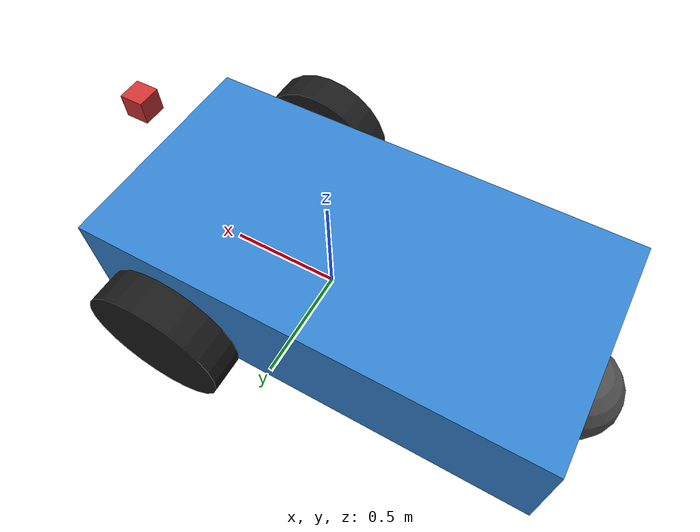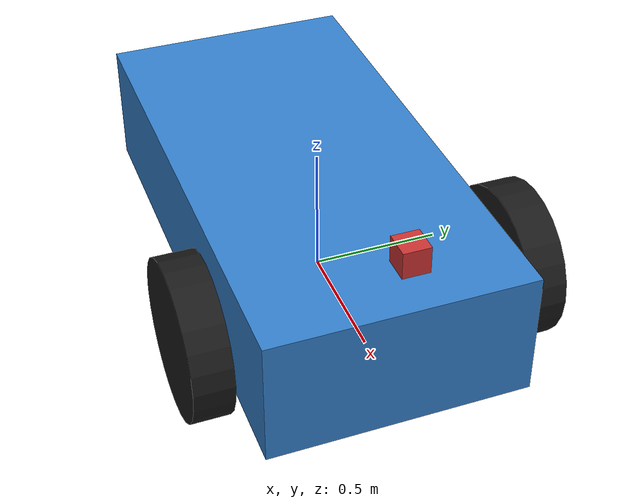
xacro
<?xml version="1.0"?>
<robot name="smart_vehicle" xmlns:xacro="http://www.ros.org/wiki/xacro">

  <!-- 매개변수들 -->
  <xacro:property name="chassis_length" value="2.0"/>
  <xacro:property name="chassis_width" value="1.0"/>
  <xacro:property name="chassis_height" value="0.5"/>
  <xacro:property name="chassis_mass" value="1.14395"/>

  <xacro:property name="wheel_radius" value="0.3"/>
  <xacro:property name="wheel_width" value="0.15"/>
  <xacro:property name="wheel_mass" value="2.0"/>
  <xacro:property name="wheel_separation" value="1.25"/>

  <xacro:property name="caster_radius" value="0.2"/>
  <xacro:property name="caster_mass" value="1.0"/>

  <!-- 매크로: 바퀴 -->
  <xacro:macro name="wheel" params="prefix reflect">
    <link name="${prefix}_wheel">
      <visual>
        <geometry>
          <cylinder radius="${wheel_radius}" length="${wheel_width}"/>
        </geometry>
        <material name="black">
          <color rgba="0.1 0.1 0.1 1"/>
        </material>
      </visual>
      <collision>
        <geometry>
          <cylinder radius="${wheel_radius}" length="${wheel_width}"/>
        </geometry>
        <surface>
          <friction>
            <ode>
              <mu>1.5</mu>
              <mu2>1.5</mu2>
              <slip1>0.01</slip1>
              <slip2>0.01</slip2>
            </ode>
          </friction>
        </surface>
      </collision>
      <inertial>
        <mass value="${wheel_mass}"/>
        <inertia ixx="0.145833" ixy="0" ixz="0" iyy="0.145833" iyz="0" izz="0.125"/>
      </inertial>
    </link>

    <joint name="${prefix}_wheel_joint" type="continuous">
      <parent link="chassis"/>
      <child link="${prefix}_wheel"/>
      <origin xyz="0.554283 ${reflect * wheel_separation/2} -0.025" rpy="-1.5707 0 0"/>
      <axis xyz="0 0 1"/>
    </joint>
  </xacro:macro>

  <!-- 베이스 링크 -->
  <link name="base_link"/>

  <!-- 차체 -->
  <link name="chassis">
    <visual>
      <geometry>
        <box size="${chassis_length} ${chassis_width} ${chassis_height}"/>
      </geometry>
      <material name="blue">
        <color rgba="0.2 0.5 0.8 1"/>
      </material>
    </visual>
    <collision>
      <geometry>
        <box size="${chassis_length} ${chassis_width} ${chassis_height}"/>
      </geometry>
    </collision>
    <inertial>
      <mass value="${chassis_mass}"/>
      <inertia ixx="0.126164" ixy="0" ixz="0" iyy="0.416519" iyz="0" izz="0.481014"/>
    </inertial>
  </link>

  <joint name="base_joint" type="fixed">
    <parent link="base_link"/>
    <child link="chassis"/>
    <origin xyz="-0.151427 0 0.175"/>
  </joint>

  <!-- 바퀴들 -->
  <xacro:wheel prefix="left" reflect="1"/>
  <xacro:wheel prefix="right" reflect="-1"/>

  <!-- 캐스터 바퀴 -->
  <link name="caster">
    <visual>
      <geometry>
        <sphere radius="${caster_radius}"/>
      </geometry>
      <material name="gray">
        <color rgba="0.3 0.3 0.3 1"/>
      </material>
    </visual>
    <collision>
      <geometry>
        <sphere radius="${caster_radius}"/>
      </geometry>
    </collision>
    <inertial>
      <mass value="${caster_mass}"/>
      <inertia ixx="0.1" ixy="0" ixz="0" iyy="0.1" iyz="0" izz="0.1"/>
    </inertial>
  </link>

  <joint name="caster_joint" type="fixed">
    <parent link="chassis"/>
    <child link="caster"/>
    <origin xyz="-0.957138 0 -0.125"/>
  </joint>

  <!-- 카메라 -->
  <link name="camera_link">
    <visual>
      <geometry>
        <box size="0.1 0.1 0.1"/>
      </geometry>
      <material name="red">
        <color rgba="0.8 0.2 0.2 1"/>
      </material>
    </visual>
    <collision>
      <geometry>
        <box size="0.1 0.1 0.1"/>
      </geometry>
    </collision>
    <inertial>
      <mass value="0.1"/>
      <inertia ixx="0.000166667" ixy="0" ixz="0" iyy="0.000166667" iyz="0" izz="0.000166667"/>
    </inertial>
  </link>

  <joint name="camera_joint" type="fixed">
    <parent link="chassis"/>
    <child link="camera_link"/>
    <origin xyz="1.0 0 0.5"/>
  </joint>

  <!-- Gazebo 플러그인들 -->
  <gazebo>
    <!-- 차동구동 플러그인 -->
    <plugin filename="gz-sim-diff-drive-system" name="gz::sim::systems::DiffDrive">
      <left_joint>left_wheel_joint</left_joint>
      <right_joint>right_wheel_joint</right_joint>
      <wheel_separation>${wheel_separation}</wheel_separation>
      <wheel_radius>${wheel_radius}</wheel_radius>
      <odom_publish_frequency>1</odom_publish_frequency>
      <topic>cmd_vel</topic>
      <odom_topic>odom</odom_topic>
      <frame_id>odom</frame_id>
      <child_frame_id>base_link</child_frame_id>
      <max_linear_acceleration>1</max_linear_acceleration>
      <min_linear_acceleration>-1</min_linear_acceleration>
      <max_angular_acceleration>2</max_angular_acceleration>
      <min_angular_acceleration>-2</min_angular_acceleration>
      <max_linear_velocity>0.5</max_linear_velocity>
      <min_linear_velocity>-0.5</min_linear_velocity>
      <max_angular_velocity>1</max_angular_velocity>
      <min_angular_velocity>-1</min_angular_velocity>
    </plugin>

    <!-- 조인트 상태 퍼블리셔 -->
    <plugin filename="gz-sim-joint-state-publisher-system" name="gz::sim::systems::JointStatePublisher">
      <topic>joint_states</topic>
    </plugin>

    <!-- 포즈 퍼블리셔 -->
    <plugin filename="gz-sim-pose-publisher-system" name="gz::sim::systems::PosePublisher">
      <publish_link_pose>true</publish_link_pose>
      <use_pose_vector_msg>true</use_pose_vector_msg>
      <static_publisher>true</static_publisher>
      <static_update_frequency>1</static_update_frequency>
    </plugin>
  </gazebo>

  <!-- Depth 카메라 센서 (Turtlebot3 예제 기반) -->
  <gazebo reference="camera_link">
    <sensor name="camera" type="depth">
      <camera>
        <horizontal_fov>1.047</horizontal_fov>
        <image>
          <width>640</width>
          <height>480</height>
          <format>R8G8B8</format>
        </image>
        <clip>
          <near>0.1</near>
          <far>3.0</far>
        </clip>
        <noise>
          <type>gaussian</type>
          <mean>0</mean>
          <stddev>0.007</stddev>
        </noise>
      </camera>
      <always_on>1</always_on>
      <update_rate>30</update_rate>
      <visualize>true</visualize>
      <plugin name="camera_controller" filename="libgazebo_ros_camera.so">
        <ros>
          <namespace></namespace>
          <remapping>image_raw:=camera/image_raw</remapping>
          <remapping>image_depth:=camera/depth/image_raw</remapping>
          <remapping>camera_info:=camera/camera_info</remapping>
          <remapping>camera_info_depth:=camera/depth/camera_info</remapping>
          <remapping>points:=camera/depth/points</remapping>
        </ros>
        <camera_name>camera</camera_name>
        <frame_name>camera_rgb_optical_frame</frame_name>
        <hack_baseline>0.07</hack_baseline>
      </plugin>
    </sensor>
  </gazebo>

  <!-- 재질 정의 -->
  <gazebo reference="chassis">
    <material>Gazebo/Blue</material>
  </gazebo>

  <gazebo reference="left_wheel">
    <material>Gazebo/Black</material>
  </gazebo>

  <gazebo reference="right_wheel">
    <material>Gazebo/Black</material>
  </gazebo>

  <gazebo reference="caster">
    <material>Gazebo/Gray</material>
  </gazebo>

  <gazebo reference="camera_link">
    <material>Gazebo/Red</material>
  </gazebo>

</robot>
